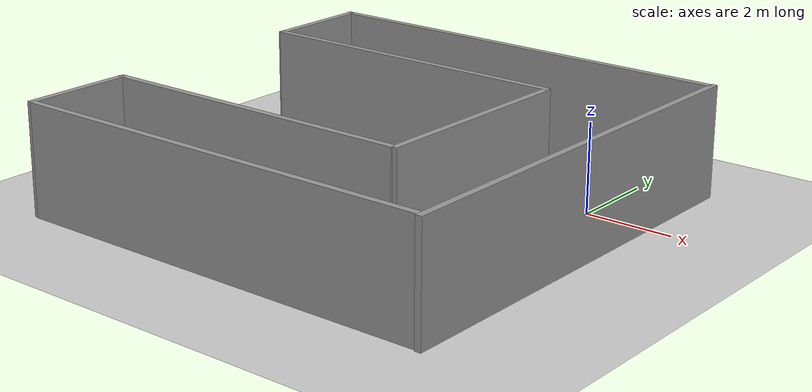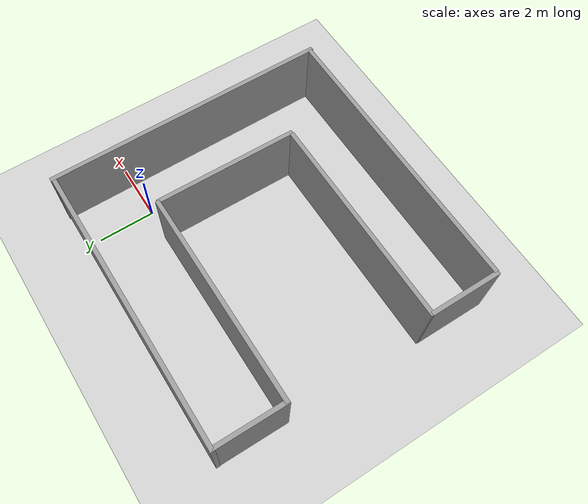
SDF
<sdf version="1.6">
 <world name="default">
  <light name="sun" type="directional">
   <pose>0 0 15 0 -0 0</pose>
   <diffuse>0.8 0.8 0.8 1</diffuse>
   <specular>0.2 0.2 0.2 1</specular>
   <attenuation>
    <range>1000</range>
    <constant>0.9</constant>
    <linear>0.01</linear>
    <quadratic>0.001</quadratic>
   </attenuation>
   <direction>-0.5 0.1 -0.9</direction>
  </light>
  <model name="ground_plane">
   <static>1</static>
   <link name="link">
    <collision name="collision">
     <geometry><plane><normal>0 0 1</normal><size>100 100</size></plane></geometry>
     <surface><friction><ode><mu>100</mu><mu2>50</mu2></ode></friction></surface>
    </collision>
    <visual name="visual">
     <transparency>1</transparency>
     <cast_shadows>0</cast_shadows>
     <geometry><plane><normal>0 0 1</normal><size>100 100</size></plane></geometry>
     <material>
      <script><uri>file://media/materials/scripts/gazebo.material</uri><name>Gazebo/Grey</name></script>
     </material>
    </visual>
   </link>
  </model>
  <gravity>0 0 -9.8</gravity>
  <magnetic_field>6e-06 2.3e-05 -4.2e-05</magnetic_field>
  <atmosphere type="adiabatic"/>
  <physics name="default_physics" default="0" type="ode">
   <max_step_size>0.001</max_step_size>
   <real_time_factor>1</real_time_factor>
   <real_time_update_rate>1000</real_time_update_rate>
  </physics>
  <scene><ambient>0.4 0.4 0.4 1</ambient><background>0.7 0.7 0.7 1</background><shadows>1</shadows></scene>
  <spherical_coordinates>
   <surface_model>EARTH_WGS84</surface_model>
   <latitude_deg>0</latitude_deg>
   <longitude_deg>0</longitude_deg>
   <elevation>0</elevation>
   <heading_deg>0</heading_deg>
  </spherical_coordinates>
  <model name="wall10">
   <pose>-3.59972 -7.37881 0 0 -0 0</pose>
   <link name="Wall_9">
    <collision name="Wall_9_Collision">
     <geometry><box><size>10 0.15 2.5</size></box></geometry>
     <pose>0 0 1.25 0 -0 0</pose>
    </collision>
    <visual name="Wall_9_Visual">
     <pose>0 0 1.25 0 -0 0</pose>
     <geometry><box><size>10 0.15 2.5</size></box></geometry>
     <material>
      <script><uri>file://media/materials/scripts/gazebo.material</uri><name>Gazebo/Grey</name></script>
      <ambient>1 1 1 1</ambient>
     </material>
     <meta><layer>0</layer></meta>
    </visual>
   </link>
   <static>1</static>
  </model>
  <model name="wall2.5">
   <pose>-8.62685 -6.18012 0 0 -0 1.56539</pose>
   <link name="Wall_11">
    <collision name="Wall_11_Collision">
     <geometry><box><size>2.5 0.15 2.5</size></box></geometry>
     <pose>0 0 1.25 0 -0 0</pose>
    </collision>
    <visual name="Wall_11_Visual">
     <pose>0 0 1.25 0 -0 0</pose>
     <geometry><box><size>2.5 0.15 2.5</size></box></geometry>
     <material>
      <script><uri>file://media/materials/scripts/gazebo.material</uri><name>Gazebo/Grey</name></script>
      <ambient>1 1 1 1</ambient>
     </material>
     <meta><layer>0</layer></meta>
    </visual>
   </link>
   <static>1</static>
  </model>
  <model name="wall7.5">
   <pose>-4.93048 -4.93733 0 0 -0 0</pose>
   <link name="Wall_13">
    <collision name="Wall_13_Collision">
     <geometry><box><size>7.5 0.15 2.5</size></box></geometry>
     <pose>0 0 1.25 0 -0 0</pose>
    </collision>
    <visual name="Wall_13_Visual">
     <pose>0 0 1.25 0 -0 0</pose>
     <geometry><box><size>7.5 0.15 2.5</size></box></geometry>
     <material>
      <script><uri>file://media/materials/scripts/gazebo.material</uri><name>Gazebo/Grey</name></script>
      <ambient>1 1 1 1</ambient>
     </material>
     <meta><layer>0</layer></meta>
    </visual>
   </link>
   <static>1</static>
  </model>
  <model name="wall10_0">
   <pose>1.426 -2.49098 0 0 -0 1.57209</pose>
   <link name="Wall_9">
    <collision name="Wall_9_Collision">
     <geometry><box><size>10 0.15 2.5</size></box></geometry>
     <pose>0 0 1.25 0 -0 0</pose>
    </collision>
    <visual name="Wall_9_Visual">
     <pose>0 0 1.25 0 -0 0</pose>
     <geometry><box><size>10 0.15 2.5</size></box></geometry>
     <material>
      <script><uri>file://media/materials/scripts/gazebo.material</uri><name>Gazebo/Grey</name></script>
      <ambient>1 1 1 1</ambient>
     </material>
     <meta><layer>0</layer></meta>
    </visual>
   </link>
   <static>1</static>
  </model>
  <model name="wall10_1">
   <pose>-3.58459 2.40656 0 0 -0 0</pose>
   <link name="Wall_9">
    <collision name="Wall_9_Collision">
     <geometry><box><size>10 0.15 2.5</size></box></geometry>
     <pose>0 0 1.25 0 -0 0</pose>
    </collision>
    <visual name="Wall_9_Visual">
     <pose>0 0 1.25 0 -0 0</pose>
     <geometry><box><size>10 0.15 2.5</size></box></geometry>
     <material>
      <script><uri>file://media/materials/scripts/gazebo.material</uri><name>Gazebo/Grey</name></script>
      <ambient>1 1 1 1</ambient>
     </material>
     <meta><layer>0</layer></meta>
    </visual>
   </link>
   <static>1</static>
  </model>
  <model name="wall2.5_0">
   <pose>-8.50877 1.18138 0 0 0 -1.5802</pose>
   <link name="Wall_11">
    <collision name="Wall_11_Collision">
     <geometry><box><size>2.5 0.15 2.5</size></box></geometry>
     <pose>0 0 1.25 0 -0 0</pose>
    </collision>
    <visual name="Wall_11_Visual">
     <pose>0 0 1.25 0 -0 0</pose>
     <geometry><box><size>2.5 0.15 2.5</size></box></geometry>
     <material>
      <script><uri>file://media/materials/scripts/gazebo.material</uri><name>Gazebo/Grey</name></script>
      <ambient>1 1 1 1</ambient>
     </material>
     <meta><layer>0</layer></meta>
    </visual>
   </link>
   <static>1</static>
  </model>
  <model name="wall7.5_0">
   <pose>-4.8112 0.005676 0 0 -0 0</pose>
   <link name="Wall_13">
    <collision name="Wall_13_Collision">
     <geometry><box><size>7.5 0.15 2.5</size></box></geometry>
     <pose>0 0 1.25 0 -0 0</pose>
    </collision>
    <visual name="Wall_13_Visual">
     <pose>0 0 1.25 0 -0 0</pose>
     <geometry><box><size>7.5 0.15 2.5</size></box></geometry>
     <material>
      <script><uri>file://media/materials/scripts/gazebo.material</uri><name>Gazebo/Grey</name></script>
      <ambient>1 1 1 1</ambient>
     </material>
     <meta><layer>0</layer></meta>
    </visual>
   </link>
   <static>1</static>
  </model>
  <model name="wall5_0">
   <pose>-1.11726 -2.48001 0 0 -0 1.56026</pose>
   <link name="Wall_15">
    <collision name="Wall_15_Collision">
     <geometry><box><size>5 0.15 2.5</size></box></geometry>
     <pose>0 0 1.25 0 -0 0</pose>
    </collision>
    <visual name="Wall_15_Visual">
     <pose>0 0 1.25 0 -0 0</pose>
     <geometry><box><size>5 0.15 2.5</size></box></geometry>
     <material>
      <script><uri>file://media/materials/scripts/gazebo.material</uri><name>Gazebo/Grey</name></script>
      <ambient>1 1 1 1</ambient>
     </material>
     <meta><layer>0</layer></meta>
    </visual>
   </link>
   <static>1</static>
  </model>
 </world>
</sdf>
